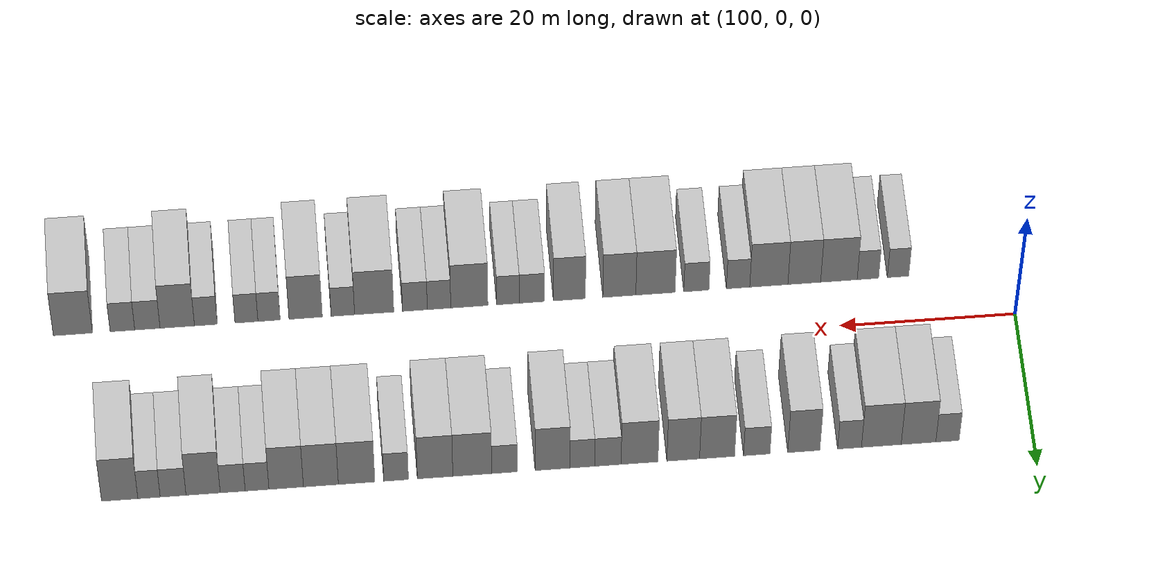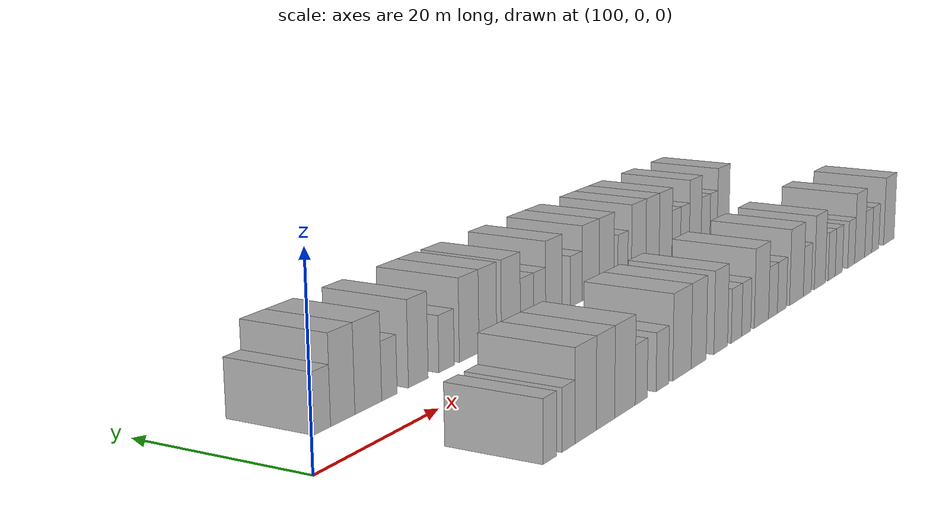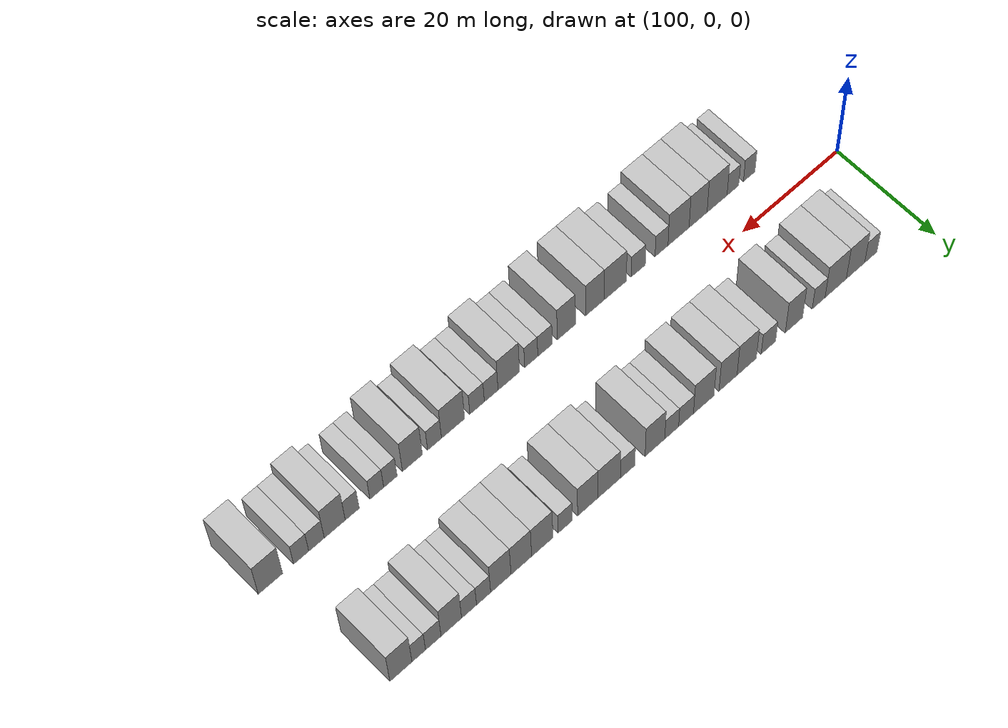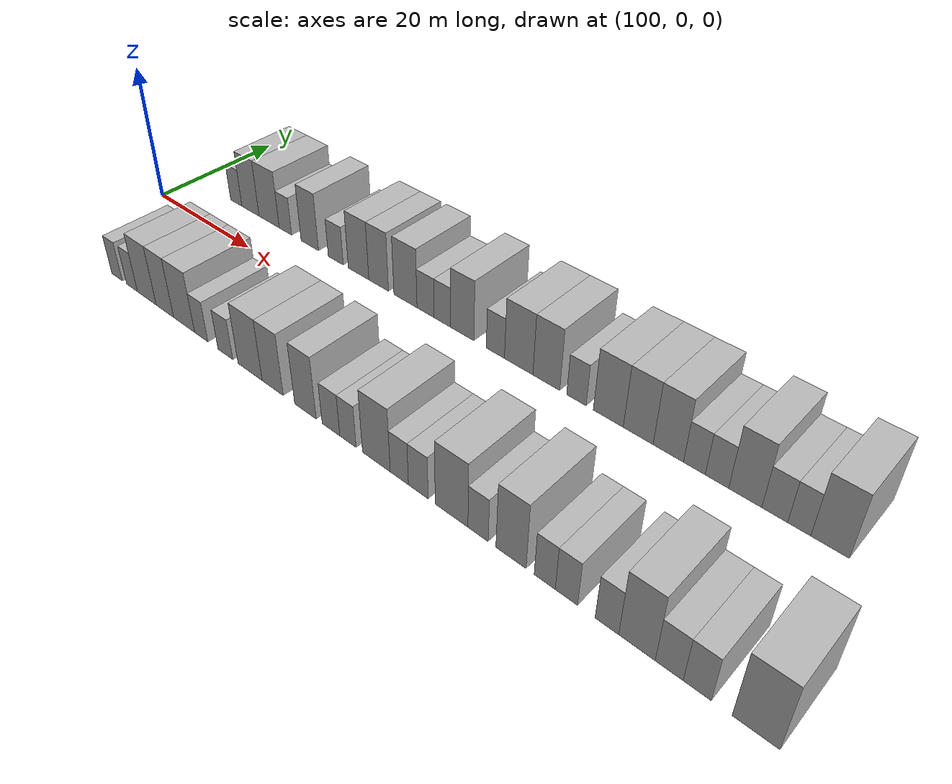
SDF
<sdf version="1.6">
 <world name="default">
  <model name="building_25">
   <static>1</static>
   <pose>109.6447 11.0000 0 0.000000 0.000000 1.570796</pose>
   <link name="link">
    <pose>0 0 3.00 0 0 0</pose>
    <collision name="collision"><geometry><box><size>10.0000 2.6178 6.0000</size></box></geometry></collision>
    <visual name="visual">
     <cast_shadows>0</cast_shadows>
     <geometry><box><size>10.0000 2.6178 6.0000</size></box></geometry>
     <material>
      <script>
       <uri>model://HANNAS_wall/materials/scripts</uri>
       <uri>model://HANNAS_wall/materials/textures</uri>
       <name>vrc/HANNAS_wall</name>
      </script>
     </material>
    </visual>
   </link>
  </model>
  <model name="building_26">
   <static>1</static>
   <pose>112.9036 11.0000 0 0.000000 0.000000 1.570796</pose>
   <link name="link">
    <pose>0 0 4.50 0 0 0</pose>
    <collision name="collision"><geometry><box><size>10.0000 3.9001 9.0000</size></box></geometry></collision>
    <visual name="visual">
     <cast_shadows>0</cast_shadows>
     <geometry><box><size>10.0000 3.9001 9.0000</size></box></geometry>
     <material>
      <script>
       <uri>model://HANNAS_wall/materials/scripts</uri>
       <uri>model://HANNAS_wall/materials/textures</uri>
       <name>vrc/HANNAS_wall</name>
      </script>
     </material>
    </visual>
   </link>
  </model>
  <model name="building_27">
   <static>1</static>
   <pose>117.0873 11.0000 0 0.000000 0.000000 1.570796</pose>
   <link name="link">
    <pose>0 0 4.50 0 0 0</pose>
    <collision name="collision"><geometry><box><size>10.0000 4.4672 9.0000</size></box></geometry></collision>
    <visual name="visual">
     <cast_shadows>0</cast_shadows>
     <geometry><box><size>10.0000 4.4672 9.0000</size></box></geometry>
     <material>
      <script>
       <uri>model://HANNAS_wall/materials/scripts</uri>
       <uri>model://HANNAS_wall/materials/textures</uri>
       <name>vrc/HANNAS_wall</name>
      </script>
     </material>
    </visual>
   </link>
  </model>
  <model name="building_28">
   <static>1</static>
   <pose>120.6604 11.0000 0 0.000000 0.000000 1.570796</pose>
   <link name="link">
    <pose>0 0 3.00 0 0 0</pose>
    <collision name="collision"><geometry><box><size>10.0000 2.6791 6.0000</size></box></geometry></collision>
    <visual name="visual">
     <cast_shadows>0</cast_shadows>
     <geometry><box><size>10.0000 2.6791 6.0000</size></box></geometry>
     <material>
      <script>
       <uri>model://HANNAS_wall/materials/scripts</uri>
       <uri>model://HANNAS_wall/materials/textures</uri>
       <name>vrc/HANNAS_wall</name>
      </script>
     </material>
    </visual>
   </link>
  </model>
  <model name="building_29">
   <static>1</static>
   <pose>125.8022 11.0000 0 0.000000 0.000000 1.570796</pose>
   <link name="link">
    <pose>0 0 4.50 0 0 0</pose>
    <collision name="collision"><geometry><box><size>10.0000 3.6045 9.0000</size></box></geometry></collision>
    <visual name="visual">
     <cast_shadows>0</cast_shadows>
     <geometry><box><size>10.0000 3.6045 9.0000</size></box></geometry>
     <material>
      <script>
       <uri>model://HANNAS_wall/materials/scripts</uri>
       <uri>model://HANNAS_wall/materials/textures</uri>
       <name>vrc/HANNAS_wall</name>
      </script>
     </material>
    </visual>
   </link>
  </model>
  <model name="building_30">
   <static>1</static>
   <pose>131.0874 11.0000 0 0.000000 0.000000 1.570796</pose>
   <link name="link">
    <pose>0 0 3.00 0 0 0</pose>
    <collision name="collision"><geometry><box><size>10.0000 2.9658 6.0000</size></box></geometry></collision>
    <visual name="visual">
     <cast_shadows>0</cast_shadows>
     <geometry><box><size>10.0000 2.9658 6.0000</size></box></geometry>
     <material>
      <script>
       <uri>model://HANNAS_wall/materials/scripts</uri>
       <uri>model://HANNAS_wall/materials/textures</uri>
       <name>vrc/HANNAS_wall</name>
      </script>
     </material>
    </visual>
   </link>
  </model>
  <model name="building_31">
   <static>1</static>
   <pose>135.5373 11.0000 0 0.000000 0.000000 1.570796</pose>
   <link name="link">
    <pose>0 0 4.50 0 0 0</pose>
    <collision name="collision"><geometry><box><size>10.0000 3.9340 9.0000</size></box></geometry></collision>
    <visual name="visual">
     <cast_shadows>0</cast_shadows>
     <geometry><box><size>10.0000 3.9340 9.0000</size></box></geometry>
     <material>
      <script>
       <uri>model://HANNAS_wall/materials/scripts</uri>
       <uri>model://HANNAS_wall/materials/textures</uri>
       <name>vrc/HANNAS_wall</name>
      </script>
     </material>
    </visual>
   </link>
  </model>
  <model name="building_32">
   <static>1</static>
   <pose>139.3370 11.0000 0 0.000000 0.000000 1.570796</pose>
   <link name="link">
    <pose>0 0 4.50 0 0 0</pose>
    <collision name="collision"><geometry><box><size>10.0000 3.6655 9.0000</size></box></geometry></collision>
    <visual name="visual">
     <cast_shadows>0</cast_shadows>
     <geometry><box><size>10.0000 3.6655 9.0000</size></box></geometry>
     <material>
      <script>
       <uri>model://HANNAS_wall/materials/scripts</uri>
       <uri>model://HANNAS_wall/materials/textures</uri>
       <name>vrc/HANNAS_wall</name>
      </script>
     </material>
    </visual>
   </link>
  </model>
  <model name="building_33">
   <static>1</static>
   <pose>144.2368 11.0000 0 0.000000 0.000000 1.570796</pose>
   <link name="link">
    <pose>0 0 4.50 0 0 0</pose>
    <collision name="collision"><geometry><box><size>10.0000 4.1340 9.0000</size></box></geometry></collision>
    <visual name="visual">
     <cast_shadows>0</cast_shadows>
     <geometry><box><size>10.0000 4.1340 9.0000</size></box></geometry>
     <material>
      <script>
       <uri>model://HANNAS_wall/materials/scripts</uri>
       <uri>model://HANNAS_wall/materials/textures</uri>
       <name>vrc/HANNAS_wall</name>
      </script>
     </material>
    </visual>
   </link>
  </model>
  <model name="building_34">
   <static>1</static>
   <pose>147.7843 11.0000 0 0.000000 0.000000 1.570796</pose>
   <link name="link">
    <pose>0 0 3.00 0 0 0</pose>
    <collision name="collision"><geometry><box><size>10.0000 2.9610 6.0000</size></box></geometry></collision>
    <visual name="visual">
     <cast_shadows>0</cast_shadows>
     <geometry><box><size>10.0000 2.9610 6.0000</size></box></geometry>
     <material>
      <script>
       <uri>model://HANNAS_wall/materials/scripts</uri>
       <uri>model://HANNAS_wall/materials/textures</uri>
       <name>vrc/HANNAS_wall</name>
      </script>
     </material>
    </visual>
   </link>
  </model>
  <model name="building_35">
   <static>1</static>
   <pose>150.6459 11.0000 0 0.000000 0.000000 1.570796</pose>
   <link name="link">
    <pose>0 0 3.00 0 0 0</pose>
    <collision name="collision"><geometry><box><size>10.0000 2.7623 6.0000</size></box></geometry></collision>
    <visual name="visual">
     <cast_shadows>0</cast_shadows>
     <geometry><box><size>10.0000 2.7623 6.0000</size></box></geometry>
     <material>
      <script>
       <uri>model://HANNAS_wall/materials/scripts</uri>
       <uri>model://HANNAS_wall/materials/textures</uri>
       <name>vrc/HANNAS_wall</name>
      </script>
     </material>
    </visual>
   </link>
  </model>
  <model name="building_36">
   <static>1</static>
   <pose>153.9752 11.0000 0 0.000000 0.000000 1.570796</pose>
   <link name="link">
    <pose>0 0 4.50 0 0 0</pose>
    <collision name="collision"><geometry><box><size>10.0000 3.8963 9.0000</size></box></geometry></collision>
    <visual name="visual">
     <cast_shadows>0</cast_shadows>
     <geometry><box><size>10.0000 3.8963 9.0000</size></box></geometry>
     <material>
      <script>
       <uri>model://HANNAS_wall/materials/scripts</uri>
       <uri>model://HANNAS_wall/materials/textures</uri>
       <name>vrc/HANNAS_wall</name>
      </script>
     </material>
    </visual>
   </link>
  </model>
  <model name="building_37">
   <static>1</static>
   <pose>159.3536 11.0000 0 0.000000 0.000000 1.570796</pose>
   <link name="link">
    <pose>0 0 3.00 0 0 0</pose>
    <collision name="collision"><geometry><box><size>10.0000 2.8605 6.0000</size></box></geometry></collision>
    <visual name="visual">
     <cast_shadows>0</cast_shadows>
     <geometry><box><size>10.0000 2.8605 6.0000</size></box></geometry>
     <material>
      <script>
       <uri>model://HANNAS_wall/materials/scripts</uri>
       <uri>model://HANNAS_wall/materials/textures</uri>
       <name>vrc/HANNAS_wall</name>
      </script>
     </material>
    </visual>
   </link>
  </model>
  <model name="building_38">
   <static>1</static>
   <pose>162.9556 11.0000 0 0.000000 0.000000 1.570796</pose>
   <link name="link">
    <pose>0 0 4.50 0 0 0</pose>
    <collision name="collision"><geometry><box><size>10.0000 4.3435 9.0000</size></box></geometry></collision>
    <visual name="visual">
     <cast_shadows>0</cast_shadows>
     <geometry><box><size>10.0000 4.3435 9.0000</size></box></geometry>
     <material>
      <script>
       <uri>model://HANNAS_wall/materials/scripts</uri>
       <uri>model://HANNAS_wall/materials/textures</uri>
       <name>vrc/HANNAS_wall</name>
      </script>
     </material>
    </visual>
   </link>
  </model>
  <model name="building_39">
   <static>1</static>
   <pose>167.1083 11.0000 0 0.000000 0.000000 1.570796</pose>
   <link name="link">
    <pose>0 0 4.50 0 0 0</pose>
    <collision name="collision"><geometry><box><size>10.0000 3.9620 9.0000</size></box></geometry></collision>
    <visual name="visual">
     <cast_shadows>0</cast_shadows>
     <geometry><box><size>10.0000 3.9620 9.0000</size></box></geometry>
     <material>
      <script>
       <uri>model://HANNAS_wall/materials/scripts</uri>
       <uri>model://HANNAS_wall/materials/textures</uri>
       <name>vrc/HANNAS_wall</name>
      </script>
     </material>
    </visual>
   </link>
  </model>
  <model name="building_40">
   <static>1</static>
   <pose>171.4648 11.0000 0 0.000000 0.000000 1.570796</pose>
   <link name="link">
    <pose>0 0 3.00 0 0 0</pose>
    <collision name="collision"><geometry><box><size>10.0000 2.7510 6.0000</size></box></geometry></collision>
    <visual name="visual">
     <cast_shadows>0</cast_shadows>
     <geometry><box><size>10.0000 2.7510 6.0000</size></box></geometry>
     <material>
      <script>
       <uri>model://HANNAS_wall/materials/scripts</uri>
       <uri>model://HANNAS_wall/materials/textures</uri>
       <name>vrc/HANNAS_wall</name>
      </script>
     </material>
    </visual>
   </link>
  </model>
  <model name="building_41">
   <static>1</static>
   <pose>175.8750 11.0000 0 0.000000 0.000000 1.570796</pose>
   <link name="link">
    <pose>0 0 4.50 0 0 0</pose>
    <collision name="collision"><geometry><box><size>10.0000 4.0695 9.0000</size></box></geometry></collision>
    <visual name="visual">
     <cast_shadows>0</cast_shadows>
     <geometry><box><size>10.0000 4.0695 9.0000</size></box></geometry>
     <material>
      <script>
       <uri>model://HANNAS_wall/materials/scripts</uri>
       <uri>model://HANNAS_wall/materials/textures</uri>
       <name>vrc/HANNAS_wall</name>
      </script>
     </material>
    </visual>
   </link>
  </model>
  <model name="building_42">
   <static>1</static>
   <pose>179.8609 11.0000 0 0.000000 0.000000 1.570796</pose>
   <link name="link">
    <pose>0 0 4.50 0 0 0</pose>
    <collision name="collision"><geometry><box><size>10.0000 3.9022 9.0000</size></box></geometry></collision>
    <visual name="visual">
     <cast_shadows>0</cast_shadows>
     <geometry><box><size>10.0000 3.9022 9.0000</size></box></geometry>
     <material>
      <script>
       <uri>model://HANNAS_wall/materials/scripts</uri>
       <uri>model://HANNAS_wall/materials/textures</uri>
       <name>vrc/HANNAS_wall</name>
      </script>
     </material>
    </visual>
   </link>
  </model>
  <model name="building_43">
   <static>1</static>
   <pose>183.7302 11.0000 0 0.000000 0.000000 1.570796</pose>
   <link name="link">
    <pose>0 0 4.50 0 0 0</pose>
    <collision name="collision"><geometry><box><size>10.0000 3.8364 9.0000</size></box></geometry></collision>
    <visual name="visual">
     <cast_shadows>0</cast_shadows>
     <geometry><box><size>10.0000 3.8364 9.0000</size></box></geometry>
     <material>
      <script>
       <uri>model://HANNAS_wall/materials/scripts</uri>
       <uri>model://HANNAS_wall/materials/textures</uri>
       <name>vrc/HANNAS_wall</name>
      </script>
     </material>
    </visual>
   </link>
  </model>
  <model name="building_44">
   <static>1</static>
   <pose>186.9730 11.0000 0 0.000000 0.000000 1.570796</pose>
   <link name="link">
    <pose>0 0 3.00 0 0 0</pose>
    <collision name="collision"><geometry><box><size>10.0000 2.6492 6.0000</size></box></geometry></collision>
    <visual name="visual">
     <cast_shadows>0</cast_shadows>
     <geometry><box><size>10.0000 2.6492 6.0000</size></box></geometry>
     <material>
      <script>
       <uri>model://HANNAS_wall/materials/scripts</uri>
       <uri>model://HANNAS_wall/materials/textures</uri>
       <name>vrc/HANNAS_wall</name>
      </script>
     </material>
    </visual>
   </link>
  </model>
  <model name="building_45">
   <static>1</static>
   <pose>189.6898 11.0000 0 0.000000 0.000000 1.570796</pose>
   <link name="link">
    <pose>0 0 3.00 0 0 0</pose>
    <collision name="collision"><geometry><box><size>10.0000 2.7843 6.0000</size></box></geometry></collision>
    <visual name="visual">
     <cast_shadows>0</cast_shadows>
     <geometry><box><size>10.0000 2.7843 6.0000</size></box></geometry>
     <material>
      <script>
       <uri>model://HANNAS_wall/materials/scripts</uri>
       <uri>model://HANNAS_wall/materials/textures</uri>
       <name>vrc/HANNAS_wall</name>
      </script>
     </material>
    </visual>
   </link>
  </model>
  <model name="building_46">
   <static>1</static>
   <pose>192.9852 11.0000 0 0.000000 0.000000 1.570796</pose>
   <link name="link">
    <pose>0 0 4.50 0 0 0</pose>
    <collision name="collision"><geometry><box><size>10.0000 3.8066 9.0000</size></box></geometry></collision>
    <visual name="visual">
     <cast_shadows>0</cast_shadows>
     <geometry><box><size>10.0000 3.8066 9.0000</size></box></geometry>
     <material>
      <script>
       <uri>model://HANNAS_wall/materials/scripts</uri>
       <uri>model://HANNAS_wall/materials/textures</uri>
       <name>vrc/HANNAS_wall</name>
      </script>
     </material>
    </visual>
   </link>
  </model>
  <model name="building_47">
   <static>1</static>
   <pose>196.3263 11.0000 0 0.000000 0.000000 1.570796</pose>
   <link name="link">
    <pose>0 0 3.00 0 0 0</pose>
    <collision name="collision"><geometry><box><size>10.0000 2.8756 6.0000</size></box></geometry></collision>
    <visual name="visual">
     <cast_shadows>0</cast_shadows>
     <geometry><box><size>10.0000 2.8756 6.0000</size></box></geometry>
     <material>
      <script>
       <uri>model://HANNAS_wall/materials/scripts</uri>
       <uri>model://HANNAS_wall/materials/textures</uri>
       <name>vrc/HANNAS_wall</name>
      </script>
     </material>
    </visual>
   </link>
  </model>
  <model name="building_48">
   <static>1</static>
   <pose>199.0056 11.0000 0 0.000000 0.000000 1.570796</pose>
   <link name="link">
    <pose>0 0 3.00 0 0 0</pose>
    <collision name="collision"><geometry><box><size>10.0000 2.4830 6.0000</size></box></geometry></collision>
    <visual name="visual">
     <cast_shadows>0</cast_shadows>
     <geometry><box><size>10.0000 2.4830 6.0000</size></box></geometry>
     <material>
      <script>
       <uri>model://HANNAS_wall/materials/scripts</uri>
       <uri>model://HANNAS_wall/materials/textures</uri>
       <name>vrc/HANNAS_wall</name>
      </script>
     </material>
    </visual>
   </link>
  </model>
  <model name="building_49">
   <static>1</static>
   <pose>202.2661 11.0000 0 0.000000 0.000000 1.570796</pose>
   <link name="link">
    <pose>0 0 4.50 0 0 0</pose>
    <collision name="collision"><geometry><box><size>10.0000 4.0379 9.0000</size></box></geometry></collision>
    <visual name="visual">
     <cast_shadows>0</cast_shadows>
     <geometry><box><size>10.0000 4.0379 9.0000</size></box></geometry>
     <material>
      <script>
       <uri>model://HANNAS_wall/materials/scripts</uri>
       <uri>model://HANNAS_wall/materials/textures</uri>
       <name>vrc/HANNAS_wall</name>
      </script>
     </material>
    </visual>
   </link>
  </model>
  <model name="building_76">
   <static>1</static>
   <pose>112.6800 -11.0000 0 0.000000 0.000000 1.570796</pose>
   <link name="link">
    <pose>0 0 3.00 0 0 0</pose>
    <collision name="collision"><geometry><box><size>10.0000 2.4472 6.0000</size></box></geometry></collision>
    <visual name="visual">
     <cast_shadows>0</cast_shadows>
     <geometry><box><size>10.0000 2.4472 6.0000</size></box></geometry>
     <material>
      <script>
       <uri>model://HANNAS_wall/materials/scripts</uri>
       <uri>model://HANNAS_wall/materials/textures</uri>
       <name>vrc/HANNAS_wall</name>
      </script>
     </material>
    </visual>
   </link>
  </model>
  <model name="building_77">
   <static>1</static>
   <pose>116.1296 -11.0000 0 0.000000 0.000000 1.570796</pose>
   <link name="link">
    <pose>0 0 3.00 0 0 0</pose>
    <collision name="collision"><geometry><box><size>10.0000 2.4521 6.0000</size></box></geometry></collision>
    <visual name="visual">
     <cast_shadows>0</cast_shadows>
     <geometry><box><size>10.0000 2.4521 6.0000</size></box></geometry>
     <material>
      <script>
       <uri>model://HANNAS_wall/materials/scripts</uri>
       <uri>model://HANNAS_wall/materials/textures</uri>
       <name>vrc/HANNAS_wall</name>
      </script>
     </material>
    </visual>
   </link>
  </model>
  <model name="building_78">
   <static>1</static>
   <pose>119.4469 -11.0000 0 0.000000 0.000000 1.570796</pose>
   <link name="link">
    <pose>0 0 4.50 0 0 0</pose>
    <collision name="collision"><geometry><box><size>10.0000 4.1826 9.0000</size></box></geometry></collision>
    <visual name="visual">
     <cast_shadows>0</cast_shadows>
     <geometry><box><size>10.0000 4.1826 9.0000</size></box></geometry>
     <material>
      <script>
       <uri>model://HANNAS_wall/materials/scripts</uri>
       <uri>model://HANNAS_wall/materials/textures</uri>
       <name>vrc/HANNAS_wall</name>
      </script>
     </material>
    </visual>
   </link>
  </model>
  <model name="building_79">
   <static>1</static>
   <pose>123.4104 -11.0000 0 0.000000 0.000000 1.570796</pose>
   <link name="link">
    <pose>0 0 4.50 0 0 0</pose>
    <collision name="collision"><geometry><box><size>10.0000 3.7445 9.0000</size></box></geometry></collision>
    <visual name="visual">
     <cast_shadows>0</cast_shadows>
     <geometry><box><size>10.0000 3.7445 9.0000</size></box></geometry>
     <material>
      <script>
       <uri>model://HANNAS_wall/materials/scripts</uri>
       <uri>model://HANNAS_wall/materials/textures</uri>
       <name>vrc/HANNAS_wall</name>
      </script>
     </material>
    </visual>
   </link>
  </model>
  <model name="building_80">
   <static>1</static>
   <pose>127.4637 -11.0000 0 0.000000 0.000000 1.570796</pose>
   <link name="link">
    <pose>0 0 4.50 0 0 0</pose>
    <collision name="collision"><geometry><box><size>10.0000 4.3621 9.0000</size></box></geometry></collision>
    <visual name="visual">
     <cast_shadows>0</cast_shadows>
     <geometry><box><size>10.0000 4.3621 9.0000</size></box></geometry>
     <material>
      <script>
       <uri>model://HANNAS_wall/materials/scripts</uri>
       <uri>model://HANNAS_wall/materials/textures</uri>
       <name>vrc/HANNAS_wall</name>
      </script>
     </material>
    </visual>
   </link>
  </model>
  <model name="building_81">
   <static>1</static>
   <pose>130.9774 -11.0000 0 0.000000 0.000000 1.570796</pose>
   <link name="link">
    <pose>0 0 3.00 0 0 0</pose>
    <collision name="collision"><geometry><box><size>10.0000 2.6651 6.0000</size></box></geometry></collision>
    <visual name="visual">
     <cast_shadows>0</cast_shadows>
     <geometry><box><size>10.0000 2.6651 6.0000</size></box></geometry>
     <material>
      <script>
       <uri>model://HANNAS_wall/materials/scripts</uri>
       <uri>model://HANNAS_wall/materials/textures</uri>
       <name>vrc/HANNAS_wall</name>
      </script>
     </material>
    </visual>
   </link>
  </model>
  <model name="building_82">
   <static>1</static>
   <pose>135.7429 -11.0000 0 0.000000 0.000000 1.570796</pose>
   <link name="link">
    <pose>0 0 3.00 0 0 0</pose>
    <collision name="collision"><geometry><box><size>10.0000 2.8660 6.0000</size></box></geometry></collision>
    <visual name="visual">
     <cast_shadows>0</cast_shadows>
     <geometry><box><size>10.0000 2.8660 6.0000</size></box></geometry>
     <material>
      <script>
       <uri>model://HANNAS_wall/materials/scripts</uri>
       <uri>model://HANNAS_wall/materials/textures</uri>
       <name>vrc/HANNAS_wall</name>
      </script>
     </material>
    </visual>
   </link>
  </model>
  <model name="building_83">
   <static>1</static>
   <pose>140.4135 -11.0000 0 0.000000 0.000000 1.570796</pose>
   <link name="link">
    <pose>0 0 4.50 0 0 0</pose>
    <collision name="collision"><geometry><box><size>10.0000 4.4753 9.0000</size></box></geometry></collision>
    <visual name="visual">
     <cast_shadows>0</cast_shadows>
     <geometry><box><size>10.0000 4.4753 9.0000</size></box></geometry>
     <material>
      <script>
       <uri>model://HANNAS_wall/materials/scripts</uri>
       <uri>model://HANNAS_wall/materials/textures</uri>
       <name>vrc/HANNAS_wall</name>
      </script>
     </material>
    </visual>
   </link>
  </model>
  <model name="building_84">
   <static>1</static>
   <pose>144.5323 -11.0000 0 0.000000 0.000000 1.570796</pose>
   <link name="link">
    <pose>0 0 4.50 0 0 0</pose>
    <collision name="collision"><geometry><box><size>10.0000 3.7622 9.0000</size></box></geometry></collision>
    <visual name="visual">
     <cast_shadows>0</cast_shadows>
     <geometry><box><size>10.0000 3.7622 9.0000</size></box></geometry>
     <material>
      <script>
       <uri>model://HANNAS_wall/materials/scripts</uri>
       <uri>model://HANNAS_wall/materials/textures</uri>
       <name>vrc/HANNAS_wall</name>
      </script>
     </material>
    </visual>
   </link>
  </model>
  <model name="building_85">
   <static>1</static>
   <pose>150.2331 -11.0000 0 0.000000 0.000000 1.570796</pose>
   <link name="link">
    <pose>0 0 4.50 0 0 0</pose>
    <collision name="collision"><geometry><box><size>10.0000 3.6393 9.0000</size></box></geometry></collision>
    <visual name="visual">
     <cast_shadows>0</cast_shadows>
     <geometry><box><size>10.0000 3.6393 9.0000</size></box></geometry>
     <material>
      <script>
       <uri>model://HANNAS_wall/materials/scripts</uri>
       <uri>model://HANNAS_wall/materials/textures</uri>
       <name>vrc/HANNAS_wall</name>
      </script>
     </material>
    </visual>
   </link>
  </model>
  <model name="building_86">
   <static>1</static>
   <pose>154.4867 -11.0000 0 0.000000 0.000000 1.570796</pose>
   <link name="link">
    <pose>0 0 3.00 0 0 0</pose>
    <collision name="collision"><geometry><box><size>10.0000 2.8679 6.0000</size></box></geometry></collision>
    <visual name="visual">
     <cast_shadows>0</cast_shadows>
     <geometry><box><size>10.0000 2.8679 6.0000</size></box></geometry>
     <material>
      <script>
       <uri>model://HANNAS_wall/materials/scripts</uri>
       <uri>model://HANNAS_wall/materials/textures</uri>
       <name>vrc/HANNAS_wall</name>
      </script>
     </material>
    </visual>
   </link>
  </model>
  <model name="building_87">
   <static>1</static>
   <pose>157.2164 -11.0000 0 0.000000 0.000000 1.570796</pose>
   <link name="link">
    <pose>0 0 3.00 0 0 0</pose>
    <collision name="collision"><geometry><box><size>10.0000 2.5914 6.0000</size></box></geometry></collision>
    <visual name="visual">
     <cast_shadows>0</cast_shadows>
     <geometry><box><size>10.0000 2.5914 6.0000</size></box></geometry>
     <material>
      <script>
       <uri>model://HANNAS_wall/materials/scripts</uri>
       <uri>model://HANNAS_wall/materials/textures</uri>
       <name>vrc/HANNAS_wall</name>
      </script>
     </material>
    </visual>
   </link>
  </model>
  <model name="building_88">
   <static>1</static>
   <pose>161.6233 -11.0000 0 0.000000 0.000000 1.570796</pose>
   <link name="link">
    <pose>0 0 4.50 0 0 0</pose>
    <collision name="collision"><geometry><box><size>10.0000 4.2225 9.0000</size></box></geometry></collision>
    <visual name="visual">
     <cast_shadows>0</cast_shadows>
     <geometry><box><size>10.0000 4.2225 9.0000</size></box></geometry>
     <material>
      <script>
       <uri>model://HANNAS_wall/materials/scripts</uri>
       <uri>model://HANNAS_wall/materials/textures</uri>
       <name>vrc/HANNAS_wall</name>
      </script>
     </material>
    </visual>
   </link>
  </model>
  <model name="building_89">
   <static>1</static>
   <pose>165.0688 -11.0000 0 0.000000 0.000000 1.570796</pose>
   <link name="link">
    <pose>0 0 3.00 0 0 0</pose>
    <collision name="collision"><geometry><box><size>10.0000 2.6684 6.0000</size></box></geometry></collision>
    <visual name="visual">
     <cast_shadows>0</cast_shadows>
     <geometry><box><size>10.0000 2.6684 6.0000</size></box></geometry>
     <material>
      <script>
       <uri>model://HANNAS_wall/materials/scripts</uri>
       <uri>model://HANNAS_wall/materials/textures</uri>
       <name>vrc/HANNAS_wall</name>
      </script>
     </material>
    </visual>
   </link>
  </model>
  <model name="building_90">
   <static>1</static>
   <pose>167.8116 -11.0000 0 0.000000 0.000000 1.570796</pose>
   <link name="link">
    <pose>0 0 3.00 0 0 0</pose>
    <collision name="collision"><geometry><box><size>10.0000 2.8171 6.0000</size></box></geometry></collision>
    <visual name="visual">
     <cast_shadows>0</cast_shadows>
     <geometry><box><size>10.0000 2.8171 6.0000</size></box></geometry>
     <material>
      <script>
       <uri>model://HANNAS_wall/materials/scripts</uri>
       <uri>model://HANNAS_wall/materials/textures</uri>
       <name>vrc/HANNAS_wall</name>
      </script>
     </material>
    </visual>
   </link>
  </model>
  <model name="building_91">
   <static>1</static>
   <pose>172.4456 -11.0000 0 0.000000 0.000000 1.570796</pose>
   <link name="link">
    <pose>0 0 4.50 0 0 0</pose>
    <collision name="collision"><geometry><box><size>10.0000 4.4509 9.0000</size></box></geometry></collision>
    <visual name="visual">
     <cast_shadows>0</cast_shadows>
     <geometry><box><size>10.0000 4.4509 9.0000</size></box></geometry>
     <material>
      <script>
       <uri>model://HANNAS_wall/materials/scripts</uri>
       <uri>model://HANNAS_wall/materials/textures</uri>
       <name>vrc/HANNAS_wall</name>
      </script>
     </material>
    </visual>
   </link>
  </model>
  <model name="building_92">
   <static>1</static>
   <pose>176.0031 -11.0000 0 0.000000 0.000000 1.570796</pose>
   <link name="link">
    <pose>0 0 3.00 0 0 0</pose>
    <collision name="collision"><geometry><box><size>10.0000 2.6642 6.0000</size></box></geometry></collision>
    <visual name="visual">
     <cast_shadows>0</cast_shadows>
     <geometry><box><size>10.0000 2.6642 6.0000</size></box></geometry>
     <material>
      <script>
       <uri>model://HANNAS_wall/materials/scripts</uri>
       <uri>model://HANNAS_wall/materials/textures</uri>
       <name>vrc/HANNAS_wall</name>
      </script>
     </material>
    </visual>
   </link>
  </model>
  <model name="building_93">
   <static>1</static>
   <pose>180.2271 -11.0000 0 0.000000 0.000000 1.570796</pose>
   <link name="link">
    <pose>0 0 4.50 0 0 0</pose>
    <collision name="collision"><geometry><box><size>10.0000 3.7837 9.0000</size></box></geometry></collision>
    <visual name="visual">
     <cast_shadows>0</cast_shadows>
     <geometry><box><size>10.0000 3.7837 9.0000</size></box></geometry>
     <material>
      <script>
       <uri>model://HANNAS_wall/materials/scripts</uri>
       <uri>model://HANNAS_wall/materials/textures</uri>
       <name>vrc/HANNAS_wall</name>
      </script>
     </material>
    </visual>
   </link>
  </model>
  <model name="building_94">
   <static>1</static>
   <pose>184.3802 -11.0000 0 0.000000 0.000000 1.570796</pose>
   <link name="link">
    <pose>0 0 3.00 0 0 0</pose>
    <collision name="collision"><geometry><box><size>10.0000 2.5227 6.0000</size></box></geometry></collision>
    <visual name="visual">
     <cast_shadows>0</cast_shadows>
     <geometry><box><size>10.0000 2.5227 6.0000</size></box></geometry>
     <material>
      <script>
       <uri>model://HANNAS_wall/materials/scripts</uri>
       <uri>model://HANNAS_wall/materials/textures</uri>
       <name>vrc/HANNAS_wall</name>
      </script>
     </material>
    </visual>
   </link>
  </model>
  <model name="building_95">
   <static>1</static>
   <pose>186.9431 -11.0000 0 0.000000 0.000000 1.570796</pose>
   <link name="link">
    <pose>0 0 3.00 0 0 0</pose>
    <collision name="collision"><geometry><box><size>10.0000 2.6030 6.0000</size></box></geometry></collision>
    <visual name="visual">
     <cast_shadows>0</cast_shadows>
     <geometry><box><size>10.0000 2.6030 6.0000</size></box></geometry>
     <material>
      <script>
       <uri>model://HANNAS_wall/materials/scripts</uri>
       <uri>model://HANNAS_wall/materials/textures</uri>
       <name>vrc/HANNAS_wall</name>
      </script>
     </material>
    </visual>
   </link>
  </model>
  <model name="building_96">
   <static>1</static>
   <pose>191.5439 -11.0000 0 0.000000 0.000000 1.570796</pose>
   <link name="link">
    <pose>0 0 3.00 0 0 0</pose>
    <collision name="collision"><geometry><box><size>10.0000 2.5985 6.0000</size></box></geometry></collision>
    <visual name="visual">
     <cast_shadows>0</cast_shadows>
     <geometry><box><size>10.0000 2.5985 6.0000</size></box></geometry>
     <material>
      <script>
       <uri>model://HANNAS_wall/materials/scripts</uri>
       <uri>model://HANNAS_wall/materials/textures</uri>
       <name>vrc/HANNAS_wall</name>
      </script>
     </material>
    </visual>
   </link>
  </model>
  <model name="building_97">
   <static>1</static>
   <pose>194.7915 -11.0000 0 0.000000 0.000000 1.570796</pose>
   <link name="link">
    <pose>0 0 4.50 0 0 0</pose>
    <collision name="collision"><geometry><box><size>10.0000 3.8966 9.0000</size></box></geometry></collision>
    <visual name="visual">
     <cast_shadows>0</cast_shadows>
     <geometry><box><size>10.0000 3.8966 9.0000</size></box></geometry>
     <material>
      <script>
       <uri>model://HANNAS_wall/materials/scripts</uri>
       <uri>model://HANNAS_wall/materials/textures</uri>
       <name>vrc/HANNAS_wall</name>
      </script>
     </material>
    </visual>
   </link>
  </model>
  <model name="building_98">
   <static>1</static>
   <pose>198.1736 -11.0000 0 0.000000 0.000000 1.570796</pose>
   <link name="link">
    <pose>0 0 3.00 0 0 0</pose>
    <collision name="collision"><geometry><box><size>10.0000 2.8676 6.0000</size></box></geometry></collision>
    <visual name="visual">
     <cast_shadows>0</cast_shadows>
     <geometry><box><size>10.0000 2.8676 6.0000</size></box></geometry>
     <material>
      <script>
       <uri>model://HANNAS_wall/materials/scripts</uri>
       <uri>model://HANNAS_wall/materials/textures</uri>
       <name>vrc/HANNAS_wall</name>
      </script>
     </material>
    </visual>
   </link>
  </model>
  <model name="building_99">
   <static>1</static>
   <pose>200.9991 -11.0000 0 0.000000 0.000000 1.570796</pose>
   <link name="link">
    <pose>0 0 3.00 0 0 0</pose>
    <collision name="collision"><geometry><box><size>10.0000 2.7835 6.0000</size></box></geometry></collision>
    <visual name="visual">
     <cast_shadows>0</cast_shadows>
     <geometry><box><size>10.0000 2.7835 6.0000</size></box></geometry>
     <material>
      <script>
       <uri>model://HANNAS_wall/materials/scripts</uri>
       <uri>model://HANNAS_wall/materials/textures</uri>
       <name>vrc/HANNAS_wall</name>
      </script>
     </material>
    </visual>
   </link>
  </model>
  <model name="building_100">
   <static>1</static>
   <pose>206.6041 -11.0000 0 0.000000 0.000000 1.570796</pose>
   <link name="link">
    <pose>0 0 4.50 0 0 0</pose>
    <collision name="collision"><geometry><box><size>10.0000 4.4265 9.0000</size></box></geometry></collision>
    <visual name="visual">
     <cast_shadows>0</cast_shadows>
     <geometry><box><size>10.0000 4.4265 9.0000</size></box></geometry>
     <material>
      <script>
       <uri>model://HANNAS_wall/materials/scripts</uri>
       <uri>model://HANNAS_wall/materials/textures</uri>
       <name>vrc/HANNAS_wall</name>
      </script>
     </material>
    </visual>
   </link>
  </model>
 </world>
</sdf>
